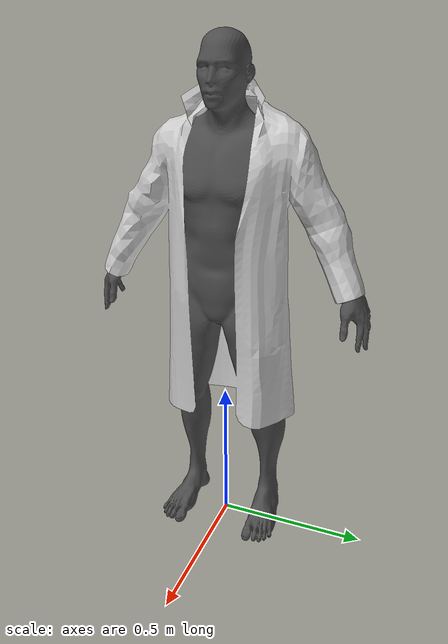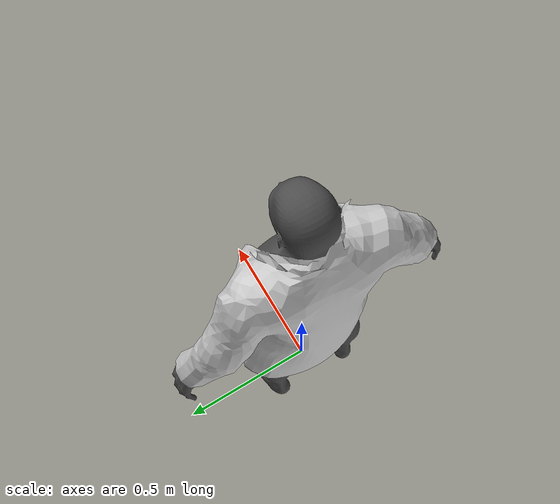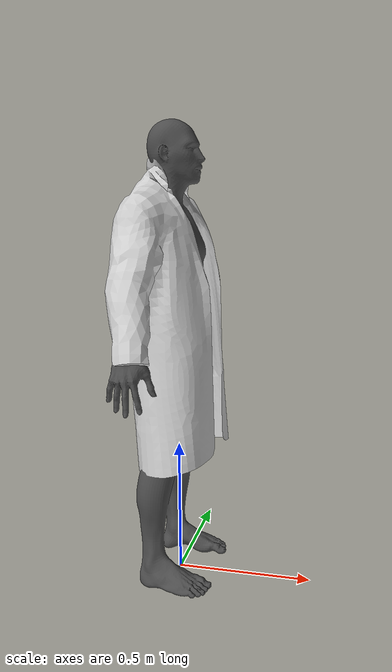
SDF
<?xml version="1.0" ?>
<sdf version='1.5'>
  <model name='gown'>
    <static>true</static>
      <link name='gown'>
         <collision name='gownc'>
          <geometry>
            <mesh>
              <scale>0.08 0.08 0.08</scale>
              <uri>model://gown/gown6.dae</uri>
            </mesh>
          </geometry>
        </collision>
        <visual name='gownv'>
        <cast_shadows>false</cast_shadows>
          <geometry>
            <mesh>
              <scale>0.08 0.08 0.08</scale>
              <uri>model://gown/gown6.dae</uri>
            </mesh>
          </geometry>
        </visual>
      </link>
  </model>
</sdf>
